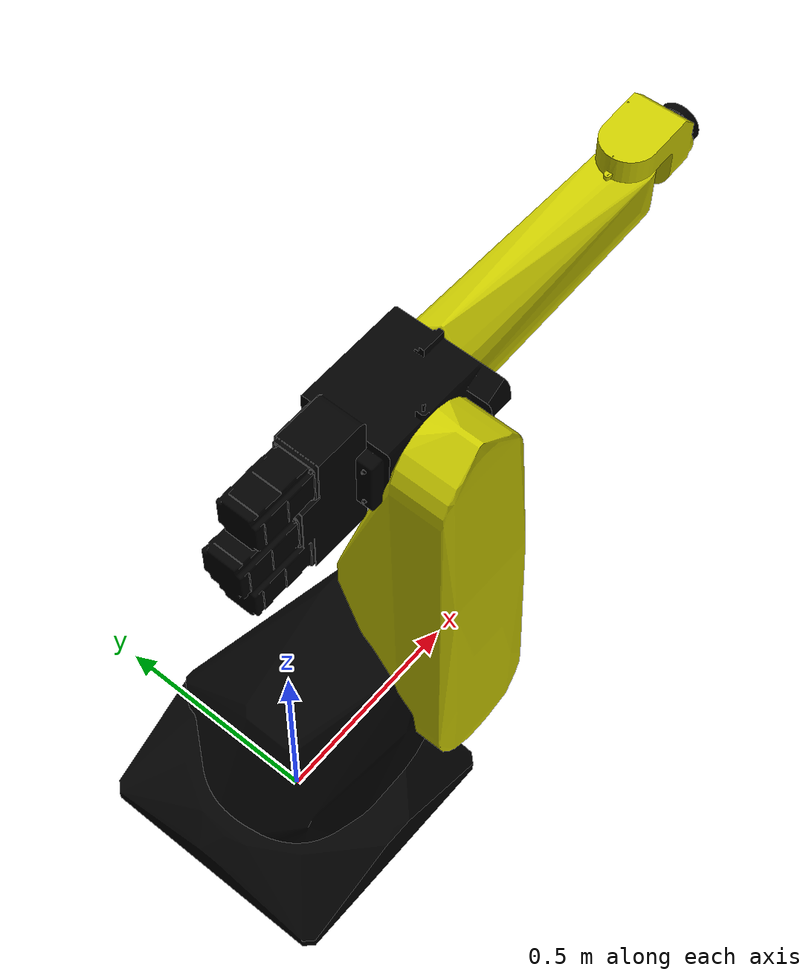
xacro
<?xml version="1.0" ?>
<robot name="sef_roboter" xmlns:xacro="http://ros.org/wiki/xacro">
	<!-- Import Rviz colors -->
 	<xacro:include filename="$(find sef_roboter_support)/urdf/materials.xacro" />
	<!-- Import Gazebo configuration  -->
 	<xacro:include filename="$(find sef_roboter_support)/urdf/sr25.gazebo" />
	<!-- Import Model -->
	<xacro:include filename="$(find sef_roboter_support)/urdf/sr25_macro.xacro" />
	<xacro:sef_roboter prefix=""/>
</robot>

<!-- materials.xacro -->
<robot>

  <material name="black">
    <color rgba="0.0 0.0 0.0 1.0"/>
  </material>

  <material name="blue">
    <color rgba="0.0 0.0 0.8 1.0"/>
  </material>

  <material name="green">
    <color rgba="0.0 0.8 0.0 1.0"/>
  </material>

  <material name="grey">
    <color rgba="0.2 0.2 0.2 1.0"/>
  </material>

  <material name="orange">
    <color rgba="${255/255} ${108/255} ${10/255} 1.0"/>
  </material>

  <material name="brown">
    <color rgba="${222/255} ${207/255} ${195/255} 1.0"/>
  </material>

  <material name="red">
    <color rgba="0.8 0.0 0.0 1.0"/>
  </material>

  <material name="white">
    <color rgba="1.0 1.0 1.0 1.0"/>
  </material>

  <material name="yellow">
    <color rgba="1 1 0 1.0"/>
  </material>

   <material name="sef_yellow">
    <color rgba="0.8 0.8 0.0 1.0"/>
  </material>

</robot>

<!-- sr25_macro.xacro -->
<robot xmlns:xacro="http://ros.org/wiki/xacro">
	<xacro:macro name="sef_roboter" params="prefix">
	      <!-- link list -->
	      <link name = "world"/>

	      <link name="${prefix}base_link">
		      <visual>
			      <origin xyz="0.0 -0.001694 0.042616" rpy="0 0 0"/>
			      <geometry>
				    <mesh filename="package://sef_roboter_support/meshes/sr25/visual/sr25_base_axis.stl" />
			      </geometry>
			      <material name="black"/>
		      </visual>
		      <collision>
			      <origin xyz="0.0 -0.001694 0.042616" rpy="0 0 0"/>
			      <geometry>
				    <mesh filename="package://sef_roboter_support/meshes/sr25/collision/sr25_base_axis.stl"  />
			      </geometry>
			      <material name="yellow"/>
		      </collision>

		      <inertial>
			      <origin xyz="0.0 -0.001694 0.042616" rpy="0 0 0"/>
			      <mass value="100"/>
			      <inertia
				  ixx="0.723" ixy="0.0" ixz="0.0"
				  iyy="0.709" iyz="0.003"
				  izz="1.346"/>
		      </inertial>
	      </link>

	      <link name="${prefix}link_1">
		      <visual>
			      <geometry>
				    <mesh filename="package://sef_roboter_support/meshes/sr25/visual/sr25_axis_1.stl"  />
			      </geometry>
			      <material name="black"/>
		      </visual>
		      <collision>
			      <geometry>
				    <mesh filename="package://sef_roboter_support/meshes/sr25/collision/sr25_axis_1.stl"  />
			      </geometry>
			      <material name="yellow" />

		      </collision>

		      <inertial>
			      <origin xyz="0.034335 0.177684 -0.134564" rpy="0 0 0"/>
			      <mass value="100"/>
			      <inertia
				  ixx="0.681" ixy="-0.024" ixz="0.053"
				  iyy="0.713" iyz="0.160"
				  izz="0.351"/>
		      </inertial>
	      </link>

	      <link name="${prefix}link_2">
		      <visual>
			      <geometry>
				    <mesh filename="package://sef_roboter_support/meshes/sr25/visual/sr25_axis_2.stl"  />
			      </geometry>
			      <material name="sef_yellow" />
		      </visual>
		      <collision>
			      <geometry>
				    <mesh filename="package://sef_roboter_support/meshes/sr25/collision/sr25_axis_2.stl"  />
			      </geometry>
			      <material name="yellow" />

		      </collision>

		      <inertial>
			      <origin xyz="0.194024 -0.000727 -0.358696" rpy="0 0 0"/>
			      <mass value="60"/>
			      <inertia
				  ixx="2.573" ixy="-0.001" ixz="-0.058"
				  iyy="2.564" iyz="0.007"
				  izz="0.231"/>
		      </inertial>
	      </link>

	      <link name="${prefix}link_3">
		      <visual>
			      <geometry>
				    <mesh filename="package://sef_roboter_support/meshes/sr25/visual/sr25_axis_3.stl" />
			      </geometry>
			      <material name="black" />
		      </visual>
		      <collision>
			      <geometry>
				    <mesh filename="package://sef_roboter_support/meshes/sr25/collision/sr25_axis_3.stl" />
			      </geometry>
			      <material name="yellow" />

		      </collision>
		      <inertial>
			      <origin xyz="0.002004 0.095949 0.000394" rpy="0 0 0"/>
			      <mass value="60"/>
			      <inertia
				  ixx="0.617" ixy="0.009" ixz="0.001"
				  iyy="0.151" iyz="-0.009"
				  izz="0.571"/>
		      </inertial>

	      </link>

	      <link name="${prefix}link_4">
		      <visual>
			      <geometry>
				    <mesh filename="package://sef_roboter_support/meshes/sr25/visual/sr25_axis_4.stl" />
			      </geometry>
			      <material name="sef_yellow" />
		      </visual>
		      <collision>
			      <geometry>
				    <mesh filename="package://sef_roboter_support/meshes/sr25/collision/sr25_axis_4.stl" />
			      </geometry>
			      <material name="yellow" />

		      </collision>
		      <inertial>
			      <origin xyz="0.000011 -0.329729 -0.000248" rpy="0 0 0"/>
			      <mass value="40"/>
			      <inertia
				  ixx="0.233" ixy="0.0" ixz="0.0"
				  iyy="0.010" iyz="0.0"
				  izz="0.233"/>
		      </inertial>
	      </link>

	      <link name="${prefix}link_5">
		      <visual>
			      <geometry>
				    <mesh filename="package://sef_roboter_support/meshes/sr25/visual/sr25_axis_5.stl" />
			      </geometry>
			      <material name="sef_yellow" />
		      </visual>
		      <collision>
			      <geometry>
				    <mesh filename="package://sef_roboter_support/meshes/sr25/collision/sr25_axis_5.stl" />
			      </geometry>
			      <material name="yellow" />

		      </collision>
		      <inertial>
			      <origin xyz="-0.000029 -0.074224 -0.055689" rpy="0 0 0"/>
			      <mass value="10"/>
			      <inertia
				  ixx="0.015" ixy="0.0" ixz="0.0"
				  iyy="0.009" iyz="0.004"
				  izz="0.011"/>
		      </inertial>
	      </link>

	      <link name="${prefix}link_tool">
		      <visual>
			      <geometry>
				    <mesh filename="package://sef_roboter_support/meshes/sr25/visual/sr25_axis_tool.stl" />
			      </geometry>
			      <material name="black" />
		      </visual>
		      <collision>
			      <geometry>
				    <mesh filename="package://sef_roboter_support/meshes/sr25/collision/sr25_axis_tool.stl" />
			      </geometry>
			      <material name="yellow" />

		      </collision>
		      <inertial>
			      <origin xyz="0.0 -0.000199 0.017661" rpy="0 0 0"/>
			      <mass value="5"/>
			      <inertia
				  ixx="0.001" ixy="0.0" ixz="0.0"
				  iyy="0.001" iyz="0.0"
				  izz="0.001"/>
		      </inertial>
	      </link>

	      <!-- end of link list -->

	      <!-- joint list -->
	      <joint name="fixed" type="fixed">
			<parent link="world"/>
			<child link="base_link"/>
	      </joint>

	      <joint name="${prefix}joint_1" type="continuous">
			<parent link="${prefix}base_link"/>
			<child link="${prefix}link_1"/>
			<origin xyz="0 0 0.075738" rpy="1.5708 0 -1.5745"/>
			<axis xyz="0 -1 0" />
			<limit lower="-2.8" upper="2.8" effort="10000" velocity="2" />
 			<dynamics damping="0.7" friction="100"/>
	      </joint>

	      <joint name="${prefix}joint_2" type="continuous">
			<parent link="${prefix}link_1"/>
			<child link="${prefix}link_2"/>
			<origin xyz="0 0.24264 -0.29599" rpy="1.5687 0 0"/>
			<axis xyz="-1 0 0" />
			<limit lower="-0.5" upper="1.5" effort="10000" velocity="2" />
			<dynamics damping="0.7" friction="100"/>
	      </joint>

	      <joint name="${prefix}joint_3" type="continuous">
			<parent link="${prefix}link_2"/>
			<child link="${prefix}link_3"/>
			<origin xyz="0 0 -0.79724" rpy="0.005529 0 0"/>
			<axis xyz="-1 0 0" />
			<limit lower="-0.5" upper="1.5" effort="10000" velocity="2" />
		        <dynamics damping="0.7" friction="100"/>
	      </joint>

	      <joint name="${prefix}joint_4" type="continuous">
			<parent link="${prefix}link_3"/>
			<child link="${prefix}link_4"/>
			<origin xyz="0 -0.15811 0" rpy="0 0.0014787 0"/>
			<axis xyz="0 1 0" />
			<limit lower="-1.6" upper="1.6" effort="10000" velocity="2" />
			<dynamics damping="0.7" friction="100"/>
              </joint>

	      <joint name="${prefix}joint_5" type="continuous">
			<parent link="${prefix}link_4"/>
			<child link="${prefix}link_5"/>
			<origin xyz="0 -0.58433 0" rpy="0 0 -0.033693"/>
			<axis xyz="0 0 1" />
			<limit lower="-3" upper="3" effort="10000" velocity="2" />
			<dynamics damping="0.7" friction="100"/>
              </joint>

	      <joint name="${prefix}joint_6" type="continuous">
			<parent link="${prefix}link_5"/>
			<child link="${prefix}link_tool"/>
			<origin xyz="0 -0.164051291252016 -0.00548103448275694" rpy="-1.5707963267949 0 3.14159265358979"/>
			<axis xyz="0 0 -1 " />
			<limit lower="-2.5" upper="2.5" effort="100" velocity="1" />
			<dynamics damping="0.7" friction="100"/>
              </joint>

	      <!-- end of joint list -->

	       <transmission name="tran_1">
			<type>transmission_interface/SimpleTransmission</type>
			<joint name="joint_1">
			  <hardwareInterface>EffortJointInterface</hardwareInterface>
			</joint>
			<actuator name="motor_1">
			  <hardwareInterface>EffortJointInterface</hardwareInterface>
			  <mechanicalReduction>80</mechanicalReduction>
			</actuator>
	      </transmission>

	      <transmission name="tran_2">
			<type>transmission_interface/SimpleTransmission</type>
			<joint name="joint_2">
			  <hardwareInterface>EffortJointInterface</hardwareInterface>
			</joint>
			<actuator name="motor_2">
			  <hardwareInterface>EffortJointInterface</hardwareInterface>
			  <mechanicalReduction>120</mechanicalReduction>
			</actuator>
	      </transmission>

	      <transmission name="tran_3">
			<type>transmission_interface/SimpleTransmission</type>
			<joint name="joint_3">
			  <hardwareInterface>EffortJointInterface</hardwareInterface>
			</joint>
			<actuator name="motor_3">
			  <hardwareInterface>EffortJointInterface</hardwareInterface>
			  <mechanicalReduction>108</mechanicalReduction>
			</actuator>
	      </transmission>

	      <transmission name="tran_4">
			<type>transmission_interface/SimpleTransmission</type>
			<joint name="joint_4">
			  <hardwareInterface>EffortJointInterface</hardwareInterface>
			</joint>
			<actuator name="motor_4">
			  <hardwareInterface>EffortJointInterface</hardwareInterface>
			  <mechanicalReduction>76.5</mechanicalReduction>
			</actuator>
	      </transmission>

	      <transmission name="tran_5">
			<type>transmission_interface/SimpleTransmission</type>
			<joint name="joint_5">
			  <hardwareInterface>EffortJointInterface</hardwareInterface>
			</joint>
			<actuator name="motor_5">
			  <hardwareInterface>EffortJointInterface</hardwareInterface>
			  <mechanicalReduction>100.5</mechanicalReduction>
			</actuator>
	      </transmission>

	      <transmission name="tran_6">
			<type>transmission_interface/SimpleTransmission</type>
			<joint name="joint_6">
			  <hardwareInterface>EffortJointInterface</hardwareInterface>
			</joint>
			<actuator name="motor_6">
			  <hardwareInterface>EffortJointInterface</hardwareInterface>
			  <mechanicalReduction>92.2</mechanicalReduction>
			</actuator>
	      </transmission>

	</xacro:macro>
</robot>
